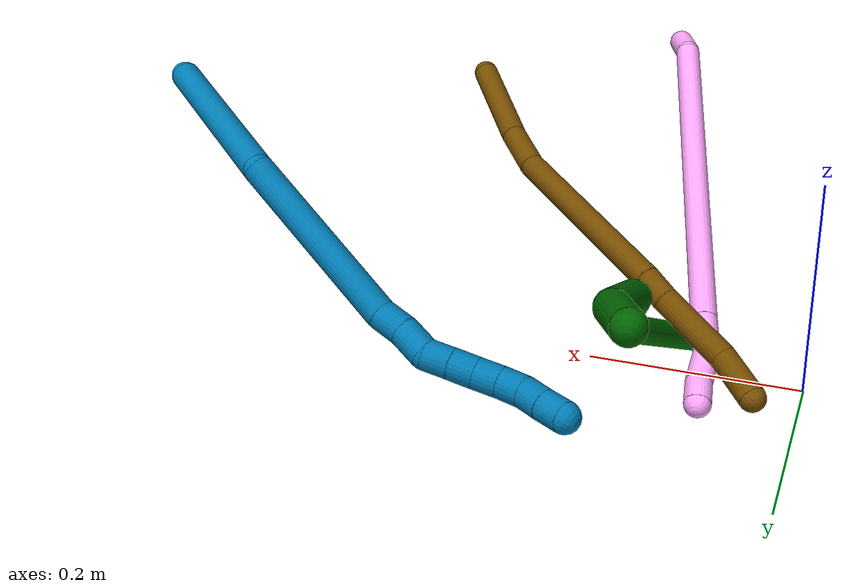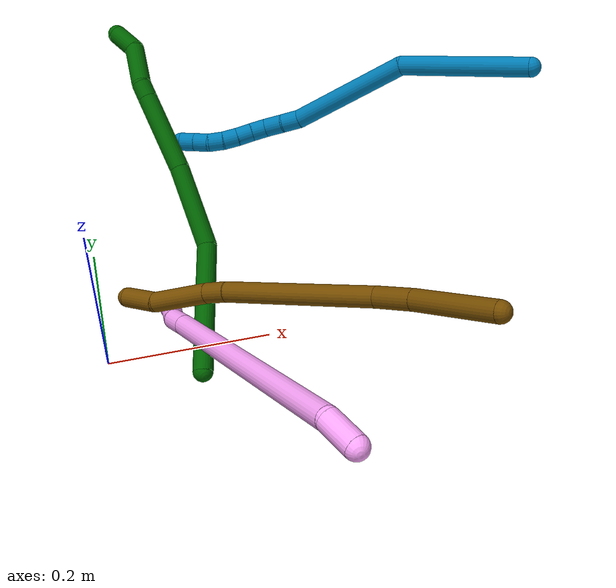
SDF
<sdf version="1.7">
 <world name="default">
  <model name="4">
   <static>0</static>
   <link name="4">
    <collision name="collision-cylinder-e_1_1_4">
     <pose>0.006972 -0.003256 -0.017856 2.96122 0.366756 2.23424</pose>
     <geometry><cylinder><radius>0.0125</radius><length>0.038886</length></cylinder></geometry>
     <surface>
      <friction><ode><mu>1.16</mu><mu2>1.16</mu2><slip1>0</slip1><slip2>0</slip2></ode></friction>
      <contact><ode><kp>1e+06</kp><kd>1</kd><max_vel>0</max_vel><min_depth>0.001</min_depth></ode></contact>
     </surface>
    </collision>
    <visual name="visual-cylinder-e_1_1_4">
     <pose>0.006972 -0.003256 -0.017856 2.96122 0.366756 2.23424</pose>
     <geometry><cylinder><radius>0.0125</radius><length>0.038886</length></cylinder></geometry>
     <material><ambient>1 0.65098 0.996078 1</ambient></material>
    </visual>
    <collision name="collision-cylinder-e_2_4_5">
     <pose>0.045728 0.035946 -0.210678 -2.90353 0.174734 -1.26426</pose>
     <geometry><cylinder><radius>0.0125</radius><length>0.365658</length></cylinder></geometry>
     <surface>
      <friction><ode><mu>1.16</mu><mu2>1.16</mu2><slip1>0</slip1><slip2>0</slip2></ode></friction>
      <contact><ode><kp>1e+06</kp><kd>1</kd><max_vel>0</max_vel><min_depth>0.001</min_depth></ode></contact>
     </surface>
    </collision>
    <visual name="visual-cylinder-e_2_4_5">
     <pose>0.045728 0.035946 -0.210678 -2.90353 0.174734 -1.26426</pose>
     <geometry><cylinder><radius>0.0125</radius><length>0.365658</length></cylinder></geometry>
     <material><ambient>1 0.65098 0.996078 1</ambient></material>
    </visual>
    <collision name="collision-cylinder-e_3_5_6">
     <pose>0.081118 0.083054 -0.403638 -2.88866 0.191646 -1.29463</pose>
     <geometry><cylinder><radius>0.0125</radius><length>0.03786</length></cylinder></geometry>
     <surface>
      <friction><ode><mu>1.16</mu><mu2>1.16</mu2><slip1>0</slip1><slip2>0</slip2></ode></friction>
      <contact><ode><kp>1e+06</kp><kd>1</kd><max_vel>0</max_vel><min_depth>0.001</min_depth></ode></contact>
     </surface>
    </collision>
    <visual name="visual-cylinder-e_3_5_6">
     <pose>0.081118 0.083054 -0.403638 -2.88866 0.191646 -1.29463</pose>
     <geometry><cylinder><radius>0.0125</radius><length>0.03786</length></cylinder></geometry>
     <material><ambient>1 0.65098 0.996078 1</ambient></material>
    </visual>
    <collision name="collision-cylinder-e_4_6_7">
     <pose>0.083359 0.09062 -0.437638 -2.96145 -0.083702 0.868294</pose>
     <geometry><cylinder><radius>0.0125</radius><length>0.032657</length></cylinder></geometry>
     <surface>
      <friction><ode><mu>1.16</mu><mu2>1.16</mu2><slip1>0</slip1><slip2>0</slip2></ode></friction>
      <contact><ode><kp>1e+06</kp><kd>1</kd><max_vel>0</max_vel><min_depth>0.001</min_depth></ode></contact>
     </surface>
    </collision>
    <visual name="visual-cylinder-e_4_6_7">
     <pose>0.083359 0.09062 -0.437638 -2.96145 -0.083702 0.868294</pose>
     <geometry><cylinder><radius>0.0125</radius><length>0.032657</length></cylinder></geometry>
     <material><ambient>1 0.65098 0.996078 1</ambient></material>
    </visual>
    <collision name="collision-cylinder-e_5_7_2">
     <pose>0.083251 0.094307 -0.466028 -3.07937 0.101033 -2.03812</pose>
     <geometry><cylinder><radius>0.0125</radius><length>0.024939</length></cylinder></geometry>
     <surface>
      <friction><ode><mu>1.16</mu><mu2>1.16</mu2><slip1>0</slip1><slip2>0</slip2></ode></friction>
      <contact><ode><kp>1e+06</kp><kd>1</kd><max_vel>0</max_vel><min_depth>0.001</min_depth></ode></contact>
     </surface>
    </collision>
    <visual name="visual-cylinder-e_5_7_2">
     <pose>0.083251 0.094307 -0.466028 -3.07937 0.101033 -2.03812</pose>
     <geometry><cylinder><radius>0.0125</radius><length>0.024939</length></cylinder></geometry>
     <material><ambient>1 0.65098 0.996078 1</ambient></material>
    </visual>
    <collision name="collision-sphere-2">
     <pose>0.084509 0.095078 -0.47841 0 -0 0</pose>
     <geometry><sphere><radius>0.0125</radius></sphere></geometry>
     <surface>
      <friction><ode><mu>1.16</mu><mu2>1.16</mu2><slip1>0</slip1><slip2>0</slip2></ode></friction>
      <contact><ode><kp>1e+06</kp><kd>1</kd><max_vel>0</max_vel><min_depth>0.001</min_depth></ode></contact>
     </surface>
    </collision>
    <visual name="visual-sphere-2">
     <pose>0.084509 0.095078 -0.47841 0 -0 0</pose>
     <geometry><sphere><radius>0.0125</radius></sphere></geometry>
     <material><ambient>1 0.65098 0.996078 1</ambient></material>
    </visual>
    <collision name="collision-sphere-7">
     <pose>0.081994 0.093535 -0.453646 0 -0 0</pose>
     <geometry><sphere><radius>0.0125</radius></sphere></geometry>
     <surface>
      <friction><ode><mu>1.16</mu><mu2>1.16</mu2><slip1>0</slip1><slip2>0</slip2></ode></friction>
      <contact><ode><kp>1e+06</kp><kd>1</kd><max_vel>0</max_vel><min_depth>0.001</min_depth></ode></contact>
     </surface>
    </collision>
    <visual name="visual-sphere-7">
     <pose>0.081994 0.093535 -0.453646 0 -0 0</pose>
     <geometry><sphere><radius>0.0125</radius></sphere></geometry>
     <material><ambient>1 0.65098 0.996078 1</ambient></material>
    </visual>
    <collision name="collision-sphere-6">
     <pose>0.084724 0.087704 -0.42163 0 -0 0</pose>
     <geometry><sphere><radius>0.0125</radius></sphere></geometry>
     <surface>
      <friction><ode><mu>1.16</mu><mu2>1.16</mu2><slip1>0</slip1><slip2>0</slip2></ode></friction>
      <contact><ode><kp>1e+06</kp><kd>1</kd><max_vel>0</max_vel><min_depth>0.001</min_depth></ode></contact>
     </surface>
    </collision>
    <visual name="visual-sphere-6">
     <pose>0.084724 0.087704 -0.42163 0 -0 0</pose>
     <geometry><sphere><radius>0.0125</radius></sphere></geometry>
     <material><ambient>1 0.65098 0.996078 1</ambient></material>
    </visual>
    <collision name="collision-sphere-5">
     <pose>0.077512 0.078404 -0.385645 0 -0 0</pose>
     <geometry><sphere><radius>0.0125</radius></sphere></geometry>
     <surface>
      <friction><ode><mu>1.16</mu><mu2>1.16</mu2><slip1>0</slip1><slip2>0</slip2></ode></friction>
      <contact><ode><kp>1e+06</kp><kd>1</kd><max_vel>0</max_vel><min_depth>0.001</min_depth></ode></contact>
     </surface>
    </collision>
    <visual name="visual-sphere-5">
     <pose>0.077512 0.078404 -0.385645 0 -0 0</pose>
     <geometry><sphere><radius>0.0125</radius></sphere></geometry>
     <material><ambient>1 0.65098 0.996078 1</ambient></material>
    </visual>
    <collision name="collision-sphere-1">
     <geometry><sphere><radius>0.0125</radius></sphere></geometry>
     <surface>
      <friction><ode><mu>1.16</mu><mu2>1.16</mu2><slip1>0</slip1><slip2>0</slip2></ode></friction>
      <contact><ode><kp>1e+06</kp><kd>1</kd><max_vel>0</max_vel><min_depth>0.001</min_depth></ode></contact>
     </surface>
    </collision>
    <visual name="visual-sphere-1">
     <geometry><sphere><radius>0.0125</radius></sphere></geometry>
     <material><ambient>1 0.65098 0.996078 1</ambient></material>
    </visual>
    <collision name="collision-sphere-4">
     <pose>0.013944 -0.006512 -0.035711 0 -0 0</pose>
     <geometry><sphere><radius>0.0125</radius></sphere></geometry>
     <surface>
      <friction><ode><mu>1.16</mu><mu2>1.16</mu2><slip1>0</slip1><slip2>0</slip2></ode></friction>
      <contact><ode><kp>1e+06</kp><kd>1</kd><max_vel>0</max_vel><min_depth>0.001</min_depth></ode></contact>
     </surface>
    </collision>
    <visual name="visual-sphere-4">
     <pose>0.013944 -0.006512 -0.035711 0 -0 0</pose>
     <geometry><sphere><radius>0.0125</radius></sphere></geometry>
     <material><ambient>1 0.65098 0.996078 1</ambient></material>
    </visual>
    <inertial>
     <pose>0.049723 0.042946 -0.237853 0 -0 0</pose>
     <mass>0.5</mass>
     <inertia>
      <ixx>-0.002617</ixx>
      <ixy>0</ixy>
      <ixz>0</ixz>
      <iyy>-0.004869</iyy>
      <iyz>0</iyz>
      <izz>-0.001702</izz>
     </inertia>
    </inertial>
   </link>
   <pose>0.198337 -0.357009 0.227116 -1.28377 -0.113195 -3.12842</pose>
  </model>
  <model name="6">
   <static>0</static>
   <link name="6">
    <collision name="collision-cylinder-e_1_1_4">
     <pose>-0.031329 0.043128 0.061285 -0.613227 -0.395985 0.126862</pose>
     <geometry><cylinder><radius>0.0125</radius><length>0.162448</length></cylinder></geometry>
     <surface>
      <friction><ode><mu>1.16</mu><mu2>1.16</mu2><slip1>0</slip1><slip2>0</slip2></ode></friction>
      <contact><ode><kp>1e+06</kp><kd>1</kd><max_vel>0</max_vel><min_depth>0.001</min_depth></ode></contact>
     </surface>
    </collision>
    <visual name="visual-cylinder-e_1_1_4">
     <pose>-0.031329 0.043128 0.061285 -0.613227 -0.395985 0.126862</pose>
     <geometry><cylinder><radius>0.0125</radius><length>0.162448</length></cylinder></geometry>
     <material><ambient>0 0.392157 0.003922 1</ambient></material>
    </visual>
    <collision name="collision-cylinder-e_2_4_5">
     <pose>-0.064442 0.121236 0.163904 -0.702313 -0.03291 0.012057</pose>
     <geometry><cylinder><radius>0.0125</radius><length>0.108358</length></cylinder></geometry>
     <surface>
      <friction><ode><mu>1.16</mu><mu2>1.16</mu2><slip1>0</slip1><slip2>0</slip2></ode></friction>
      <contact><ode><kp>1e+06</kp><kd>1</kd><max_vel>0</max_vel><min_depth>0.001</min_depth></ode></contact>
     </surface>
    </collision>
    <visual name="visual-cylinder-e_2_4_5">
     <pose>-0.064442 0.121236 0.163904 -0.702313 -0.03291 0.012057</pose>
     <geometry><cylinder><radius>0.0125</radius><length>0.108358</length></cylinder></geometry>
     <material><ambient>0 0.392157 0.003922 1</ambient></material>
    </visual>
    <collision name="collision-cylinder-e_3_5_6">
     <pose>-0.063739 0.190272 0.245587 -0.701053 0.047028 -0.017197</pose>
     <geometry><cylinder><radius>0.0125</radius><length>0.105716</length></cylinder></geometry>
     <surface>
      <friction><ode><mu>1.16</mu><mu2>1.16</mu2><slip1>0</slip1><slip2>0</slip2></ode></friction>
      <contact><ode><kp>1e+06</kp><kd>1</kd><max_vel>0</max_vel><min_depth>0.001</min_depth></ode></contact>
     </surface>
    </collision>
    <visual name="visual-cylinder-e_3_5_6">
     <pose>-0.063739 0.190272 0.245587 -0.701053 0.047028 -0.017197</pose>
     <geometry><cylinder><radius>0.0125</radius><length>0.105716</length></cylinder></geometry>
     <material><ambient>0 0.392157 0.003922 1</ambient></material>
    </visual>
    <collision name="collision-cylinder-e_4_6_7">
     <pose>-0.060777 0.231521 0.294386 -0.705014 0.043002 -0.015821</pose>
     <geometry><cylinder><radius>0.0125</radius><length>0.022216</length></cylinder></geometry>
     <surface>
      <friction><ode><mu>1.16</mu><mu2>1.16</mu2><slip1>0</slip1><slip2>0</slip2></ode></friction>
      <contact><ode><kp>1e+06</kp><kd>1</kd><max_vel>0</max_vel><min_depth>0.001</min_depth></ode></contact>
     </surface>
    </collision>
    <visual name="visual-cylinder-e_4_6_7">
     <pose>-0.060777 0.231521 0.294386 -0.705014 0.043002 -0.015821</pose>
     <geometry><cylinder><radius>0.0125</radius><length>0.022216</length></cylinder></geometry>
     <material><ambient>0 0.392157 0.003922 1</ambient></material>
    </visual>
    <collision name="collision-cylinder-e_5_7_8">
     <pose>-0.066081 0.25203 0.330097 -0.454429 -0.188321 0.043663</pose>
     <geometry><cylinder><radius>0.0125</radius><length>0.061768</length></cylinder></geometry>
     <surface>
      <friction><ode><mu>1.16</mu><mu2>1.16</mu2><slip1>0</slip1><slip2>0</slip2></ode></friction>
      <contact><ode><kp>1e+06</kp><kd>1</kd><max_vel>0</max_vel><min_depth>0.001</min_depth></ode></contact>
     </surface>
    </collision>
    <visual name="visual-cylinder-e_5_7_8">
     <pose>-0.066081 0.25203 0.330097 -0.454429 -0.188321 0.043663</pose>
     <geometry><cylinder><radius>0.0125</radius><length>0.061768</length></cylinder></geometry>
     <material><ambient>0 0.392157 0.003922 1</ambient></material>
    </visual>
    <collision name="collision-cylinder-e_6_8_2">
     <pose>-0.06589 0.271332 0.375201 -0.323612 0.307318 -0.050552</pose>
     <geometry><cylinder><radius>0.0125</radius><length>0.039494</length></cylinder></geometry>
     <surface>
      <friction><ode><mu>1.16</mu><mu2>1.16</mu2><slip1>0</slip1><slip2>0</slip2></ode></friction>
      <contact><ode><kp>1e+06</kp><kd>1</kd><max_vel>0</max_vel><min_depth>0.001</min_depth></ode></contact>
     </surface>
    </collision>
    <visual name="visual-cylinder-e_6_8_2">
     <pose>-0.06589 0.271332 0.375201 -0.323612 0.307318 -0.050552</pose>
     <geometry><cylinder><radius>0.0125</radius><length>0.039494</length></cylinder></geometry>
     <material><ambient>0 0.392157 0.003922 1</ambient></material>
    </visual>
    <collision name="collision-sphere-2">
     <pose>-0.059916 0.277317 0.393046 0 -0 0</pose>
     <geometry><sphere><radius>0.0125</radius></sphere></geometry>
     <surface>
      <friction><ode><mu>1.16</mu><mu2>1.16</mu2><slip1>0</slip1><slip2>0</slip2></ode></friction>
      <contact><ode><kp>1e+06</kp><kd>1</kd><max_vel>0</max_vel><min_depth>0.001</min_depth></ode></contact>
     </surface>
    </collision>
    <visual name="visual-sphere-2">
     <pose>-0.059916 0.277317 0.393046 0 -0 0</pose>
     <geometry><sphere><radius>0.0125</radius></sphere></geometry>
     <material><ambient>0 0.392157 0.003922 1</ambient></material>
    </visual>
    <collision name="collision-sphere-4">
     <pose>-0.062659 0.086256 0.122569 0 -0 0</pose>
     <geometry><sphere><radius>0.0125</radius></sphere></geometry>
     <surface>
      <friction><ode><mu>1.16</mu><mu2>1.16</mu2><slip1>0</slip1><slip2>0</slip2></ode></friction>
      <contact><ode><kp>1e+06</kp><kd>1</kd><max_vel>0</max_vel><min_depth>0.001</min_depth></ode></contact>
     </surface>
    </collision>
    <visual name="visual-sphere-4">
     <pose>-0.062659 0.086256 0.122569 0 -0 0</pose>
     <geometry><sphere><radius>0.0125</radius></sphere></geometry>
     <material><ambient>0 0.392157 0.003922 1</ambient></material>
    </visual>
    <collision name="collision-sphere-1">
     <geometry><sphere><radius>0.0125</radius></sphere></geometry>
     <surface>
      <friction><ode><mu>1.16</mu><mu2>1.16</mu2><slip1>0</slip1><slip2>0</slip2></ode></friction>
      <contact><ode><kp>1e+06</kp><kd>1</kd><max_vel>0</max_vel><min_depth>0.001</min_depth></ode></contact>
     </surface>
    </collision>
    <visual name="visual-sphere-1">
     <geometry><sphere><radius>0.0125</radius></sphere></geometry>
     <material><ambient>0 0.392157 0.003922 1</ambient></material>
    </visual>
    <collision name="collision-sphere-8">
     <pose>-0.071863 0.265346 0.357356 0 -0 0</pose>
     <geometry><sphere><radius>0.0125</radius></sphere></geometry>
     <surface>
      <friction><ode><mu>1.16</mu><mu2>1.16</mu2><slip1>0</slip1><slip2>0</slip2></ode></friction>
      <contact><ode><kp>1e+06</kp><kd>1</kd><max_vel>0</max_vel><min_depth>0.001</min_depth></ode></contact>
     </surface>
    </collision>
    <visual name="visual-sphere-8">
     <pose>-0.071863 0.265346 0.357356 0 -0 0</pose>
     <geometry><sphere><radius>0.0125</radius></sphere></geometry>
     <material><ambient>0 0.392157 0.003922 1</ambient></material>
    </visual>
    <collision name="collision-sphere-5">
     <pose>-0.066224 0.156215 0.205239 0 -0 0</pose>
     <geometry><sphere><radius>0.0125</radius></sphere></geometry>
     <surface>
      <friction><ode><mu>1.16</mu><mu2>1.16</mu2><slip1>0</slip1><slip2>0</slip2></ode></friction>
      <contact><ode><kp>1e+06</kp><kd>1</kd><max_vel>0</max_vel><min_depth>0.001</min_depth></ode></contact>
     </surface>
    </collision>
    <visual name="visual-sphere-5">
     <pose>-0.066224 0.156215 0.205239 0 -0 0</pose>
     <geometry><sphere><radius>0.0125</radius></sphere></geometry>
     <material><ambient>0 0.392157 0.003922 1</ambient></material>
    </visual>
    <collision name="collision-sphere-6">
     <pose>-0.061255 0.224329 0.285934 0 -0 0</pose>
     <geometry><sphere><radius>0.0125</radius></sphere></geometry>
     <surface>
      <friction><ode><mu>1.16</mu><mu2>1.16</mu2><slip1>0</slip1><slip2>0</slip2></ode></friction>
      <contact><ode><kp>1e+06</kp><kd>1</kd><max_vel>0</max_vel><min_depth>0.001</min_depth></ode></contact>
     </surface>
    </collision>
    <visual name="visual-sphere-6">
     <pose>-0.061255 0.224329 0.285934 0 -0 0</pose>
     <geometry><sphere><radius>0.0125</radius></sphere></geometry>
     <material><ambient>0 0.392157 0.003922 1</ambient></material>
    </visual>
    <collision name="collision-sphere-7">
     <pose>-0.0603 0.238713 0.302838 0 -0 0</pose>
     <geometry><sphere><radius>0.0125</radius></sphere></geometry>
     <surface>
      <friction><ode><mu>1.16</mu><mu2>1.16</mu2><slip1>0</slip1><slip2>0</slip2></ode></friction>
      <contact><ode><kp>1e+06</kp><kd>1</kd><max_vel>0</max_vel><min_depth>0.001</min_depth></ode></contact>
     </surface>
    </collision>
    <visual name="visual-sphere-7">
     <pose>-0.0603 0.238713 0.302838 0 -0 0</pose>
     <geometry><sphere><radius>0.0125</radius></sphere></geometry>
     <material><ambient>0 0.392157 0.003922 1</ambient></material>
    </visual>
    <inertial>
     <pose>-0.053689 0.143369 0.190852 0 -0 0</pose>
     <mass>0.5</mass>
     <inertia>
      <ixx>0.000613</ixx>
      <ixy>0</ixy>
      <ixz>0</ixz>
      <iyy>0.00056</iyy>
      <iyz>0</iyz>
      <izz>-0.000171</izz>
     </inertia>
    </inertial>
   </link>
   <pose>0.107921 -0.051082 0.01149 1.7152 0.063722 -2.96909</pose>
  </model>
  <model name="9">
   <static>0</static>
   <link name="9">
    <collision name="collision-cylinder-e_1_1_4">
     <pose>-0.018299 0.032486 -0.075677 -2.73611 -0.21864 0.980844</pose>
     <geometry><cylinder><radius>0.0125</radius><length>0.168727</length></cylinder></geometry>
     <surface>
      <friction><ode><mu>1.16</mu><mu2>1.16</mu2><slip1>0</slip1><slip2>0</slip2></ode></friction>
      <contact><ode><kp>1e+06</kp><kd>1</kd><max_vel>0</max_vel><min_depth>0.001</min_depth></ode></contact>
     </surface>
    </collision>
    <visual name="visual-cylinder-e_1_1_4">
     <pose>-0.018299 0.032486 -0.075677 -2.73611 -0.21864 0.980844</pose>
     <geometry><cylinder><radius>0.0125</radius><length>0.168727</length></cylinder></geometry>
     <material><ambient>0 0.490196 0.709804 1</ambient></material>
    </visual>
    <collision name="collision-cylinder-e_2_4_5">
     <pose>-0.02124 0.076835 -0.228724 -2.98945 0.193743 -1.81137</pose>
     <geometry><cylinder><radius>0.0125</radius><length>0.159533</length></cylinder></geometry>
     <surface>
      <friction><ode><mu>1.16</mu><mu2>1.16</mu2><slip1>0</slip1><slip2>0</slip2></ode></friction>
      <contact><ode><kp>1e+06</kp><kd>1</kd><max_vel>0</max_vel><min_depth>0.001</min_depth></ode></contact>
     </surface>
    </collision>
    <visual name="visual-cylinder-e_2_4_5">
     <pose>-0.02124 0.076835 -0.228724 -2.98945 0.193743 -1.81137</pose>
     <geometry><cylinder><radius>0.0125</radius><length>0.159533</length></cylinder></geometry>
     <material><ambient>0 0.490196 0.709804 1</ambient></material>
    </visual>
    <collision name="collision-cylinder-e_3_5_6">
     <pose>-0.006461 0.089272 -0.317913 -3.09301 -0.048933 1.578</pose>
     <geometry><cylinder><radius>0.0125</radius><length>0.023694</length></cylinder></geometry>
     <surface>
      <friction><ode><mu>1.16</mu><mu2>1.16</mu2><slip1>0</slip1><slip2>0</slip2></ode></friction>
      <contact><ode><kp>1e+06</kp><kd>1</kd><max_vel>0</max_vel><min_depth>0.001</min_depth></ode></contact>
     </surface>
    </collision>
    <visual name="visual-cylinder-e_3_5_6">
     <pose>-0.006461 0.089272 -0.317913 -3.09301 -0.048933 1.578</pose>
     <geometry><cylinder><radius>0.0125</radius><length>0.023694</length></cylinder></geometry>
     <material><ambient>0 0.490196 0.709804 1</ambient></material>
    </visual>
    <collision name="collision-cylinder-e_4_6_7">
     <pose>-0.007085 0.092691 -0.342564 -2.92348 -0.003383 0.030899</pose>
     <geometry><cylinder><radius>0.0125</radius><length>0.026288</length></cylinder></geometry>
     <surface>
      <friction><ode><mu>1.16</mu><mu2>1.16</mu2><slip1>0</slip1><slip2>0</slip2></ode></friction>
      <contact><ode><kp>1e+06</kp><kd>1</kd><max_vel>0</max_vel><min_depth>0.001</min_depth></ode></contact>
     </surface>
    </collision>
    <visual name="visual-cylinder-e_4_6_7">
     <pose>-0.007085 0.092691 -0.342564 -2.92348 -0.003383 0.030899</pose>
     <geometry><cylinder><radius>0.0125</radius><length>0.026288</length></cylinder></geometry>
     <material><ambient>0 0.490196 0.709804 1</ambient></material>
    </visual>
    <collision name="collision-cylinder-e_5_7_8">
     <pose>-0.008232 0.092981 -0.365524 2.89455 -0.105136 -0.801713</pose>
     <geometry><cylinder><radius>0.0125</radius><length>0.021005</length></cylinder></geometry>
     <surface>
      <friction><ode><mu>1.16</mu><mu2>1.16</mu2><slip1>0</slip1><slip2>0</slip2></ode></friction>
      <contact><ode><kp>1e+06</kp><kd>1</kd><max_vel>0</max_vel><min_depth>0.001</min_depth></ode></contact>
     </surface>
    </collision>
    <visual name="visual-cylinder-e_5_7_8">
     <pose>-0.008232 0.092981 -0.365524 2.89455 -0.105136 -0.801713</pose>
     <geometry><cylinder><radius>0.0125</radius><length>0.021005</length></cylinder></geometry>
     <material><ambient>0 0.490196 0.709804 1</ambient></material>
    </visual>
    <collision name="collision-cylinder-e_6_8_9">
     <pose>-0.010176 0.08792 -0.385519 2.89278 -0.082511 -0.63767</pose>
     <geometry><cylinder><radius>0.0125</radius><length>0.020431</length></cylinder></geometry>
     <surface>
      <friction><ode><mu>1.16</mu><mu2>1.16</mu2><slip1>0</slip1><slip2>0</slip2></ode></friction>
      <contact><ode><kp>1e+06</kp><kd>1</kd><max_vel>0</max_vel><min_depth>0.001</min_depth></ode></contact>
     </surface>
    </collision>
    <visual name="visual-cylinder-e_6_8_9">
     <pose>-0.010176 0.08792 -0.385519 2.89278 -0.082511 -0.63767</pose>
     <geometry><cylinder><radius>0.0125</radius><length>0.020431</length></cylinder></geometry>
     <material><ambient>0 0.490196 0.709804 1</ambient></material>
    </visual>
    <collision name="collision-cylinder-e_7_9_10">
     <pose>-0.012378 0.083179 -0.405132 2.91632 -0.135182 -1.07857</pose>
     <geometry><cylinder><radius>0.0125</radius><length>0.020181</length></cylinder></geometry>
     <surface>
      <friction><ode><mu>1.16</mu><mu2>1.16</mu2><slip1>0</slip1><slip2>0</slip2></ode></friction>
      <contact><ode><kp>1e+06</kp><kd>1</kd><max_vel>0</max_vel><min_depth>0.001</min_depth></ode></contact>
     </surface>
    </collision>
    <visual name="visual-cylinder-e_7_9_10">
     <pose>-0.012378 0.083179 -0.405132 2.91632 -0.135182 -1.07857</pose>
     <geometry><cylinder><radius>0.0125</radius><length>0.020181</length></cylinder></geometry>
     <material><ambient>0 0.490196 0.709804 1</ambient></material>
    </visual>
    <collision name="collision-cylinder-e_8_10_11">
     <pose>-0.015991 0.080003 -0.424637 3.04528 -0.22588 -2.33804</pose>
     <geometry><cylinder><radius>0.0125</radius><length>0.020121</length></cylinder></geometry>
     <surface>
      <friction><ode><mu>1.16</mu><mu2>1.16</mu2><slip1>0</slip1><slip2>0</slip2></ode></friction>
      <contact><ode><kp>1e+06</kp><kd>1</kd><max_vel>0</max_vel><min_depth>0.001</min_depth></ode></contact>
     </surface>
    </collision>
    <visual name="visual-cylinder-e_8_10_11">
     <pose>-0.015991 0.080003 -0.424637 3.04528 -0.22588 -2.33804</pose>
     <geometry><cylinder><radius>0.0125</radius><length>0.020121</length></cylinder></geometry>
     <material><ambient>0 0.490196 0.709804 1</ambient></material>
    </visual>
    <collision name="collision-cylinder-e_9_11_12">
     <pose>-0.021305 0.08082 -0.443753 -2.95568 -0.311051 2.06874</pose>
     <geometry><cylinder><radius>0.0125</radius><length>0.020001</length></cylinder></geometry>
     <surface>
      <friction><ode><mu>1.16</mu><mu2>1.16</mu2><slip1>0</slip1><slip2>0</slip2></ode></friction>
      <contact><ode><kp>1e+06</kp><kd>1</kd><max_vel>0</max_vel><min_depth>0.001</min_depth></ode></contact>
     </surface>
    </collision>
    <visual name="visual-cylinder-e_9_11_12">
     <pose>-0.021305 0.08082 -0.443753 -2.95568 -0.311051 2.06874</pose>
     <geometry><cylinder><radius>0.0125</radius><length>0.020001</length></cylinder></geometry>
     <material><ambient>0 0.490196 0.709804 1</ambient></material>
    </visual>
    <collision name="collision-cylinder-e_10_12_2">
     <pose>-0.027467 0.083902 -0.462534 -3.00221 -0.315024 2.31344</pose>
     <geometry><cylinder><radius>0.0125</radius><length>0.020019</length></cylinder></geometry>
     <surface>
      <friction><ode><mu>1.16</mu><mu2>1.16</mu2><slip1>0</slip1><slip2>0</slip2></ode></friction>
      <contact><ode><kp>1e+06</kp><kd>1</kd><max_vel>0</max_vel><min_depth>0.001</min_depth></ode></contact>
     </surface>
    </collision>
    <visual name="visual-cylinder-e_10_12_2">
     <pose>-0.027467 0.083902 -0.462534 -3.00221 -0.315024 2.31344</pose>
     <geometry><cylinder><radius>0.0125</radius><length>0.020019</length></cylinder></geometry>
     <material><ambient>0 0.490196 0.709804 1</ambient></material>
    </visual>
    <collision name="collision-sphere-2">
     <pose>-0.030568 0.085224 -0.471959 0 -0 0</pose>
     <geometry><sphere><radius>0.0125</radius></sphere></geometry>
     <surface>
      <friction><ode><mu>1.16</mu><mu2>1.16</mu2><slip1>0</slip1><slip2>0</slip2></ode></friction>
      <contact><ode><kp>1e+06</kp><kd>1</kd><max_vel>0</max_vel><min_depth>0.001</min_depth></ode></contact>
     </surface>
    </collision>
    <visual name="visual-sphere-2">
     <pose>-0.030568 0.085224 -0.471959 0 -0 0</pose>
     <geometry><sphere><radius>0.0125</radius></sphere></geometry>
     <material><ambient>0 0.490196 0.709804 1</ambient></material>
    </visual>
    <collision name="collision-sphere-12">
     <pose>-0.024366 0.08258 -0.45311 0 -0 0</pose>
     <geometry><sphere><radius>0.0125</radius></sphere></geometry>
     <surface>
      <friction><ode><mu>1.16</mu><mu2>1.16</mu2><slip1>0</slip1><slip2>0</slip2></ode></friction>
      <contact><ode><kp>1e+06</kp><kd>1</kd><max_vel>0</max_vel><min_depth>0.001</min_depth></ode></contact>
     </surface>
    </collision>
    <visual name="visual-sphere-12">
     <pose>-0.024366 0.08258 -0.45311 0 -0 0</pose>
     <geometry><sphere><radius>0.0125</radius></sphere></geometry>
     <material><ambient>0 0.490196 0.709804 1</ambient></material>
    </visual>
    <collision name="collision-sphere-11">
     <pose>-0.018244 0.07906 -0.434397 0 -0 0</pose>
     <geometry><sphere><radius>0.0125</radius></sphere></geometry>
     <surface>
      <friction><ode><mu>1.16</mu><mu2>1.16</mu2><slip1>0</slip1><slip2>0</slip2></ode></friction>
      <contact><ode><kp>1e+06</kp><kd>1</kd><max_vel>0</max_vel><min_depth>0.001</min_depth></ode></contact>
     </surface>
    </collision>
    <visual name="visual-sphere-11">
     <pose>-0.018244 0.07906 -0.434397 0 -0 0</pose>
     <geometry><sphere><radius>0.0125</radius></sphere></geometry>
     <material><ambient>0 0.490196 0.709804 1</ambient></material>
    </visual>
    <collision name="collision-sphere-10">
     <pose>-0.013738 0.080946 -0.414878 0 -0 0</pose>
     <geometry><sphere><radius>0.0125</radius></sphere></geometry>
     <surface>
      <friction><ode><mu>1.16</mu><mu2>1.16</mu2><slip1>0</slip1><slip2>0</slip2></ode></friction>
      <contact><ode><kp>1e+06</kp><kd>1</kd><max_vel>0</max_vel><min_depth>0.001</min_depth></ode></contact>
     </surface>
    </collision>
    <visual name="visual-sphere-10">
     <pose>-0.013738 0.080946 -0.414878 0 -0 0</pose>
     <geometry><sphere><radius>0.0125</radius></sphere></geometry>
     <material><ambient>0 0.490196 0.709804 1</ambient></material>
    </visual>
    <collision name="collision-sphere-9">
     <pose>-0.011018 0.085413 -0.395386 0 -0 0</pose>
     <geometry><sphere><radius>0.0125</radius></sphere></geometry>
     <surface>
      <friction><ode><mu>1.16</mu><mu2>1.16</mu2><slip1>0</slip1><slip2>0</slip2></ode></friction>
      <contact><ode><kp>1e+06</kp><kd>1</kd><max_vel>0</max_vel><min_depth>0.001</min_depth></ode></contact>
     </surface>
    </collision>
    <visual name="visual-sphere-9">
     <pose>-0.011018 0.085413 -0.395386 0 -0 0</pose>
     <geometry><sphere><radius>0.0125</radius></sphere></geometry>
     <material><ambient>0 0.490196 0.709804 1</ambient></material>
    </visual>
    <collision name="collision-sphere-4">
     <pose>-0.036597 0.064972 -0.151354 0 -0 0</pose>
     <geometry><sphere><radius>0.0125</radius></sphere></geometry>
     <surface>
      <friction><ode><mu>1.16</mu><mu2>1.16</mu2><slip1>0</slip1><slip2>0</slip2></ode></friction>
      <contact><ode><kp>1e+06</kp><kd>1</kd><max_vel>0</max_vel><min_depth>0.001</min_depth></ode></contact>
     </surface>
    </collision>
    <visual name="visual-sphere-4">
     <pose>-0.036597 0.064972 -0.151354 0 -0 0</pose>
     <geometry><sphere><radius>0.0125</radius></sphere></geometry>
     <material><ambient>0 0.490196 0.709804 1</ambient></material>
    </visual>
    <collision name="collision-sphere-1">
     <geometry><sphere><radius>0.0125</radius></sphere></geometry>
     <surface>
      <friction><ode><mu>1.16</mu><mu2>1.16</mu2><slip1>0</slip1><slip2>0</slip2></ode></friction>
      <contact><ode><kp>1e+06</kp><kd>1</kd><max_vel>0</max_vel><min_depth>0.001</min_depth></ode></contact>
     </surface>
    </collision>
    <visual name="visual-sphere-1">
     <geometry><sphere><radius>0.0125</radius></sphere></geometry>
     <material><ambient>0 0.490196 0.709804 1</ambient></material>
    </visual>
    <collision name="collision-sphere-8">
     <pose>-0.009334 0.090427 -0.375652 0 -0 0</pose>
     <geometry><sphere><radius>0.0125</radius></sphere></geometry>
     <surface>
      <friction><ode><mu>1.16</mu><mu2>1.16</mu2><slip1>0</slip1><slip2>0</slip2></ode></friction>
      <contact><ode><kp>1e+06</kp><kd>1</kd><max_vel>0</max_vel><min_depth>0.001</min_depth></ode></contact>
     </surface>
    </collision>
    <visual name="visual-sphere-8">
     <pose>-0.009334 0.090427 -0.375652 0 -0 0</pose>
     <geometry><sphere><radius>0.0125</radius></sphere></geometry>
     <material><ambient>0 0.490196 0.709804 1</ambient></material>
    </visual>
    <collision name="collision-sphere-5">
     <pose>-0.005882 0.088697 -0.306094 0 -0 0</pose>
     <geometry><sphere><radius>0.0125</radius></sphere></geometry>
     <surface>
      <friction><ode><mu>1.16</mu><mu2>1.16</mu2><slip1>0</slip1><slip2>0</slip2></ode></friction>
      <contact><ode><kp>1e+06</kp><kd>1</kd><max_vel>0</max_vel><min_depth>0.001</min_depth></ode></contact>
     </surface>
    </collision>
    <visual name="visual-sphere-5">
     <pose>-0.005882 0.088697 -0.306094 0 -0 0</pose>
     <geometry><sphere><radius>0.0125</radius></sphere></geometry>
     <material><ambient>0 0.490196 0.709804 1</ambient></material>
    </visual>
    <collision name="collision-sphere-6">
     <pose>-0.007041 0.089847 -0.329731 0 -0 0</pose>
     <geometry><sphere><radius>0.0125</radius></sphere></geometry>
     <surface>
      <friction><ode><mu>1.16</mu><mu2>1.16</mu2><slip1>0</slip1><slip2>0</slip2></ode></friction>
      <contact><ode><kp>1e+06</kp><kd>1</kd><max_vel>0</max_vel><min_depth>0.001</min_depth></ode></contact>
     </surface>
    </collision>
    <visual name="visual-sphere-6">
     <pose>-0.007041 0.089847 -0.329731 0 -0 0</pose>
     <geometry><sphere><radius>0.0125</radius></sphere></geometry>
     <material><ambient>0 0.490196 0.709804 1</ambient></material>
    </visual>
    <collision name="collision-sphere-7">
     <pose>-0.00713 0.095535 -0.355396 0 -0 0</pose>
     <geometry><sphere><radius>0.0125</radius></sphere></geometry>
     <surface>
      <friction><ode><mu>1.16</mu><mu2>1.16</mu2><slip1>0</slip1><slip2>0</slip2></ode></friction>
      <contact><ode><kp>1e+06</kp><kd>1</kd><max_vel>0</max_vel><min_depth>0.001</min_depth></ode></contact>
     </surface>
    </collision>
    <visual name="visual-sphere-7">
     <pose>-0.00713 0.095535 -0.355396 0 -0 0</pose>
     <geometry><sphere><radius>0.0125</radius></sphere></geometry>
     <material><ambient>0 0.490196 0.709804 1</ambient></material>
    </visual>
    <inertial>
     <pose>-0.017487 0.065249 -0.232411 0 -0 0</pose>
     <mass>0.5</mass>
     <inertia>
      <ixx>0.000143</ixx>
      <ixy>0</ixy>
      <ixz>0</ixz>
      <iyy>-8.2e-05</iyy>
      <iyz>0</iyz>
      <izz>-0.000221</izz>
     </inertia>
    </inertial>
   </link>
   <pose>0.554497 0.103307 0.271583 -0.601223 1.11642 -0.873314</pose>
  </model>
  <model name="12">
   <static>0</static>
   <link name="12">
    <collision name="collision-cylinder-e_1_1_4">
     <pose>0.001694 0.000477 -0.053147 -3.13262 0.031853 -2.59268</pose>
     <geometry><cylinder><radius>0.0125</radius><length>0.106352</length></cylinder></geometry>
     <surface>
      <friction><ode><mu>1.16</mu><mu2>1.16</mu2><slip1>0</slip1><slip2>0</slip2></ode></friction>
      <contact><ode><kp>1e+06</kp><kd>1</kd><max_vel>0</max_vel><min_depth>0.001</min_depth></ode></contact>
     </surface>
    </collision>
    <visual name="visual-cylinder-e_1_1_4">
     <pose>0.001694 0.000477 -0.053147 -3.13262 0.031853 -2.59268</pose>
     <geometry><cylinder><radius>0.0125</radius><length>0.106352</length></cylinder></geometry>
     <material><ambient>0.466667 0.301961 0 1</ambient></material>
    </visual>
    <collision name="collision-cylinder-e_2_4_5">
     <pose>0.002457 0.00254 -0.130122 -3.07512 -0.038926 1.05929</pose>
     <geometry><cylinder><radius>0.0125</radius><length>0.047796</length></cylinder></geometry>
     <surface>
      <friction><ode><mu>1.16</mu><mu2>1.16</mu2><slip1>0</slip1><slip2>0</slip2></ode></friction>
      <contact><ode><kp>1e+06</kp><kd>1</kd><max_vel>0</max_vel><min_depth>0.001</min_depth></ode></contact>
     </surface>
    </collision>
    <visual name="visual-cylinder-e_2_4_5">
     <pose>0.002457 0.00254 -0.130122 -3.07512 -0.038926 1.05929</pose>
     <geometry><cylinder><radius>0.0125</radius><length>0.047796</length></cylinder></geometry>
     <material><ambient>0.466667 0.301961 0 1</ambient></material>
    </visual>
    <collision name="collision-cylinder-e_3_5_6">
     <pose>-0.011581 0.027001 -0.246079 -2.89822 -0.137218 1.02388</pose>
     <geometry><cylinder><radius>0.0125</radius><length>0.191657</length></cylinder></geometry>
     <surface>
      <friction><ode><mu>1.16</mu><mu2>1.16</mu2><slip1>0</slip1><slip2>0</slip2></ode></friction>
      <contact><ode><kp>1e+06</kp><kd>1</kd><max_vel>0</max_vel><min_depth>0.001</min_depth></ode></contact>
     </surface>
    </collision>
    <visual name="visual-cylinder-e_3_5_6">
     <pose>-0.011581 0.027001 -0.246079 -2.89822 -0.137218 1.02388</pose>
     <geometry><cylinder><radius>0.0125</radius><length>0.191657</length></cylinder></geometry>
     <material><ambient>0.466667 0.301961 0 1</ambient></material>
    </visual>
    <collision name="collision-cylinder-e_4_6_7">
     <pose>-0.027381 0.051986 -0.352369 -2.99371 -0.185852 1.79843</pose>
     <geometry><cylinder><radius>0.0125</radius><length>0.029134</length></cylinder></geometry>
     <surface>
      <friction><ode><mu>1.16</mu><mu2>1.16</mu2><slip1>0</slip1><slip2>0</slip2></ode></friction>
      <contact><ode><kp>1e+06</kp><kd>1</kd><max_vel>0</max_vel><min_depth>0.001</min_depth></ode></contact>
     </surface>
    </collision>
    <visual name="visual-cylinder-e_4_6_7">
     <pose>-0.027381 0.051986 -0.352369 -2.99371 -0.185852 1.79843</pose>
     <geometry><cylinder><radius>0.0125</radius><length>0.029134</length></cylinder></geometry>
     <material><ambient>0.466667 0.301961 0 1</ambient></material>
    </visual>
    <collision name="collision-cylinder-e_5_7_8">
     <pose>-0.041557 0.060897 -0.402006 -2.95219 -0.307813 2.04277</pose>
     <geometry><cylinder><radius>0.0125</radius><length>0.075809</length></cylinder></geometry>
     <surface>
      <friction><ode><mu>1.16</mu><mu2>1.16</mu2><slip1>0</slip1><slip2>0</slip2></ode></friction>
      <contact><ode><kp>1e+06</kp><kd>1</kd><max_vel>0</max_vel><min_depth>0.001</min_depth></ode></contact>
     </surface>
    </collision>
    <visual name="visual-cylinder-e_5_7_8">
     <pose>-0.041557 0.060897 -0.402006 -2.95219 -0.307813 2.04277</pose>
     <geometry><cylinder><radius>0.0125</radius><length>0.075809</length></cylinder></geometry>
     <material><ambient>0.466667 0.301961 0 1</ambient></material>
    </visual>
    <collision name="collision-cylinder-e_6_8_2">
     <pose>-0.052962 0.070799 -0.461913 -3.01533 0.003218 -0.050894</pose>
     <geometry><cylinder><radius>0.0125</radius><length>0.049251</length></cylinder></geometry>
     <surface>
      <friction><ode><mu>1.16</mu><mu2>1.16</mu2><slip1>0</slip1><slip2>0</slip2></ode></friction>
      <contact><ode><kp>1e+06</kp><kd>1</kd><max_vel>0</max_vel><min_depth>0.001</min_depth></ode></contact>
     </surface>
    </collision>
    <visual name="visual-cylinder-e_6_8_2">
     <pose>-0.052962 0.070799 -0.461913 -3.01533 0.003218 -0.050894</pose>
     <geometry><cylinder><radius>0.0125</radius><length>0.049251</length></cylinder></geometry>
     <material><ambient>0.466667 0.301961 0 1</ambient></material>
    </visual>
    <collision name="collision-sphere-2">
     <pose>-0.052883 0.0739 -0.486342 0 -0 0</pose>
     <geometry><sphere><radius>0.0125</radius></sphere></geometry>
     <surface>
      <friction><ode><mu>1.16</mu><mu2>1.16</mu2><slip1>0</slip1><slip2>0</slip2></ode></friction>
      <contact><ode><kp>1e+06</kp><kd>1</kd><max_vel>0</max_vel><min_depth>0.001</min_depth></ode></contact>
     </surface>
    </collision>
    <visual name="visual-sphere-2">
     <pose>-0.052883 0.0739 -0.486342 0 -0 0</pose>
     <geometry><sphere><radius>0.0125</radius></sphere></geometry>
     <material><ambient>0.466667 0.301961 0 1</ambient></material>
    </visual>
    <collision name="collision-sphere-4">
     <pose>0.003387 0.000953 -0.106294 0 -0 0</pose>
     <geometry><sphere><radius>0.0125</radius></sphere></geometry>
     <surface>
      <friction><ode><mu>1.16</mu><mu2>1.16</mu2><slip1>0</slip1><slip2>0</slip2></ode></friction>
      <contact><ode><kp>1e+06</kp><kd>1</kd><max_vel>0</max_vel><min_depth>0.001</min_depth></ode></contact>
     </surface>
    </collision>
    <visual name="visual-sphere-4">
     <pose>0.003387 0.000953 -0.106294 0 -0 0</pose>
     <geometry><sphere><radius>0.0125</radius></sphere></geometry>
     <material><ambient>0.466667 0.301961 0 1</ambient></material>
    </visual>
    <collision name="collision-sphere-1">
     <geometry><sphere><radius>0.0125</radius></sphere></geometry>
     <surface>
      <friction><ode><mu>1.16</mu><mu2>1.16</mu2><slip1>0</slip1><slip2>0</slip2></ode></friction>
      <contact><ode><kp>1e+06</kp><kd>1</kd><max_vel>0</max_vel><min_depth>0.001</min_depth></ode></contact>
     </surface>
    </collision>
    <visual name="visual-sphere-1">
     <geometry><sphere><radius>0.0125</radius></sphere></geometry>
     <material><ambient>0.466667 0.301961 0 1</ambient></material>
    </visual>
    <collision name="collision-sphere-8">
     <pose>-0.053041 0.067698 -0.437483 0 -0 0</pose>
     <geometry><sphere><radius>0.0125</radius></sphere></geometry>
     <surface>
      <friction><ode><mu>1.16</mu><mu2>1.16</mu2><slip1>0</slip1><slip2>0</slip2></ode></friction>
      <contact><ode><kp>1e+06</kp><kd>1</kd><max_vel>0</max_vel><min_depth>0.001</min_depth></ode></contact>
     </surface>
    </collision>
    <visual name="visual-sphere-8">
     <pose>-0.053041 0.067698 -0.437483 0 -0 0</pose>
     <geometry><sphere><radius>0.0125</radius></sphere></geometry>
     <material><ambient>0.466667 0.301961 0 1</ambient></material>
    </visual>
    <collision name="collision-sphere-5">
     <pose>0.001527 0.004126 -0.153949 0 -0 0</pose>
     <geometry><sphere><radius>0.0125</radius></sphere></geometry>
     <surface>
      <friction><ode><mu>1.16</mu><mu2>1.16</mu2><slip1>0</slip1><slip2>0</slip2></ode></friction>
      <contact><ode><kp>1e+06</kp><kd>1</kd><max_vel>0</max_vel><min_depth>0.001</min_depth></ode></contact>
     </surface>
    </collision>
    <visual name="visual-sphere-5">
     <pose>0.001527 0.004126 -0.153949 0 -0 0</pose>
     <geometry><sphere><radius>0.0125</radius></sphere></geometry>
     <material><ambient>0.466667 0.301961 0 1</ambient></material>
    </visual>
    <collision name="collision-sphere-6">
     <pose>-0.024689 0.049877 -0.33821 0 -0 0</pose>
     <geometry><sphere><radius>0.0125</radius></sphere></geometry>
     <surface>
      <friction><ode><mu>1.16</mu><mu2>1.16</mu2><slip1>0</slip1><slip2>0</slip2></ode></friction>
      <contact><ode><kp>1e+06</kp><kd>1</kd><max_vel>0</max_vel><min_depth>0.001</min_depth></ode></contact>
     </surface>
    </collision>
    <visual name="visual-sphere-6">
     <pose>-0.024689 0.049877 -0.33821 0 -0 0</pose>
     <geometry><sphere><radius>0.0125</radius></sphere></geometry>
     <material><ambient>0.466667 0.301961 0 1</ambient></material>
    </visual>
    <collision name="collision-sphere-7">
     <pose>-0.030073 0.054096 -0.366529 0 -0 0</pose>
     <geometry><sphere><radius>0.0125</radius></sphere></geometry>
     <surface>
      <friction><ode><mu>1.16</mu><mu2>1.16</mu2><slip1>0</slip1><slip2>0</slip2></ode></friction>
      <contact><ode><kp>1e+06</kp><kd>1</kd><max_vel>0</max_vel><min_depth>0.001</min_depth></ode></contact>
     </surface>
    </collision>
    <visual name="visual-sphere-7">
     <pose>-0.030073 0.054096 -0.366529 0 -0 0</pose>
     <geometry><sphere><radius>0.0125</radius></sphere></geometry>
     <material><ambient>0.466667 0.301961 0 1</ambient></material>
    </visual>
    <inertial>
     <pose>-0.016957 0.02993 -0.245052 0 -0 0</pose>
     <mass>0.5</mass>
     <inertia>
      <ixx>0.000706</ixx>
      <ixy>0</ixy>
      <ixz>0</ixz>
      <iyy>0.000309</iyy>
      <iyz>0</iyz>
      <izz>-0.0001</izz>
     </inertia>
    </inertial>
   </link>
   <pose>0.386643 -0.221305 0.20791 1.0526 -0.545826 0.963842</pose>
  </model>
 </world>
</sdf>
